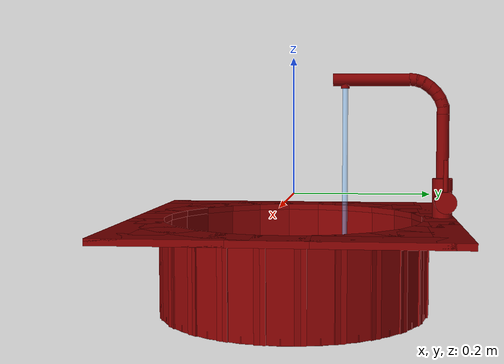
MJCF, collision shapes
<?xml version='1.0' encoding='UTF-8'?>
<mujoco model="model">
  <option timestep="0.002" gravity="0.0 0.0 -9.81"/>
  <compiler angle="radian"/>
  <asset>
    <mesh file="visuals/handle.obj" name="handle_vis"/>
    <mesh file="visuals/Body001.obj" name="Body001_vis"/>
    <mesh file="visuals/spout.obj" name="spout_vis"/>
    <texture file="visuals/T_BC001.png" name="Body001_material" type="2d"/>
    <material name="Body001_material" rgba="1 1 1 1.0" texture="Body001_material" shininess="0.1" specular="5"/>
    <texture file="visuals/T_BC001.png" name="handle_material" type="2d"/>
    <material name="handle_material" rgba="1 1 1 1.0" texture="handle_material" shininess="0.1" specular="5"/>
    <texture file="visuals/T_BC001.png" name="spout_material" type="2d"/>
    <material name="spout_material" rgba="1 1 1 1.0" texture="spout_material" shininess="0.1" specular="5"/>
  </asset>
  <default>
    <default class="visual">
      <geom conaffinity="0" contype="0" group="1" type="mesh"/>
    </default>
    <default class="collision">
      <geom group="0" rgba="0.5 0 0 0.5" solimp="0.998 0.998 0.001" solref="0.001 2"/>
    </default>
    <default class="spawn">
      <geom group="0" rgba="1 1 1 0.5" contype="0" conaffinity="0"/>
      <site group="0" rgba="1 1 1 0.5"/>
    </default>
    <default class="region">
      <geom group="1" conaffinity="0" contype="0" rgba="0 1 0 0"/>
    </default>
  </default>
  <worldbody>
    <body>
      <body name="object">
        <geom mesh="Body001_vis" type="mesh" solimp="0.998 0.998 0.001" solref="0.001 1" friction="0.95 0.3 0.1" class="visual" material="Body001_material"/>
        <geom type="box" pos="-0.00000000 -0.21502809 -0.04046098" size="0.033866215497255325 0.023684591054916382 0.00461614690721035" quat="1.0 0.0 0.0 0.0" class="collision"/>
        <geom type="box" pos="-0.00000000 -0.19462398 -0.10933814" size="0.033866215497255325 0.0025562462396919727 0.06660525500774384" quat="1.0 0.0 0.0 0.0" class="collision"/>
        <geom type="box" pos="-0.05824038 -0.20700471 -0.04046098" size="0.033866215497255325 0.023684000596404076 0.00461614690721035" quat="0.9914448261260986 0.0 -0.0 -0.1305263340473175" class="collision"/>
        <geom type="box" pos="-0.05036251 -0.18799168 -0.10933814" size="0.033866215497255325 0.06660331785678864 0.0025562408845871687" quat="0.7010574340820312 0.7010573744773865 -0.09229595214128494 -0.09229595959186554" class="collision"/>
        <geom type="box" pos="-0.10749446 -0.18622111 -0.04046098" size="0.033866215497255325 0.023684000596404076 0.00461614690721035" quat="0.9659258127212524 0.0 -0.0 -0.2588191032409668" class="collision"/>
        <geom type="box" pos="-0.09729239 -0.16855063 -0.10933814" size="0.033866215497255325 0.06660331785678864 0.0025562408845871687" quat="0.6830127239227295 0.6830126643180847 -0.1830126941204071 -0.1830127090215683" class="collision"/>
        <geom type="box" pos="-0.15201935 -0.15205355 -0.04046098" size="0.033866215497255325 0.023684000596404076 0.00461614690721035" quat="0.9238795042037964 0.0 -0.0 -0.3826834559440613" class="collision"/>
        <geom type="box" pos="-0.13759145 -0.13762566 -0.10933814" size="0.033866215497255325 0.06660331785678864 0.0025562411174178123" quat="0.6532815098762512 0.6532814502716064 -0.27059802412986755 -0.27059805393218994" class="collision"/>
        <geom type="box" pos="-0.18618390 -0.10752630 -0.04046098" size="0.033866215497255325 0.023684000596404076 0.00461614690721035" quat="0.8660253882408142 0.0 -0.0 -0.5" class="collision"/>
        <geom type="box" pos="-0.16851342 -0.09732424 -0.10933814" size="0.033866215497255325 0.06660331785678864 0.0025562411174178123" quat="0.6123724579811096 0.6123723983764648 -0.3535533845424652 -0.3535534143447876" class="collision"/>
        <geom type="box" pos="-0.20682181 -0.05880121 -0.04046098" size="0.033866215497255325 0.023684000596404076 0.00461614690721035" quat="0.7933533191680908 0.0 -0.0 -0.6087614297866821" class="collision"/>
        <geom type="box" pos="-0.18795092 -0.05039291 -0.10933814" size="0.033866215497255325 0.06660331785678864 0.0025562408845871687" quat="0.5609855651855469 0.5609855055809021 -0.43045932054519653 -0.4304593503475189" class="collision"/>
        <geom type="box" pos="-0.21498354 -0.00002991 -0.04046098" size="0.023684002459049225 0.03386673331260681 0.00461614690721035" quat="1.0 0.0 0.0 0.0" class="collision"/>
        <geom type="box" pos="-0.19457942 -0.00002991 -0.10933814" size="0.002556248800829053 0.03386622294783592 0.06660500168800354" quat="1.0 0.0 0.0 0.0" class="collision"/>
        <geom type="box" pos="-0.20702247 0.05797795 -0.04046098" size="0.033866215497255325 0.023684000596404076 0.00461614690721035" quat="0.6087614297866821 0.0 -0.0 -0.7933533191680908" class="collision"/>
        <geom type="box" pos="-0.18794712 0.05033261 -0.10933814" size="0.033866215497255325 0.06660331785678864 0.0025562408845871687" quat="0.4304593503475189 0.43045932054519653 -0.5609855055809021 -0.5609855651855469" class="collision"/>
        <geom type="box" pos="-0.18617658 0.10746452 -0.04046098" size="0.033866215497255325 0.023684000596404076 0.00461614690721035" quat="0.5000000596046448 0.0 -0.0 -0.8660253882408142" class="collision"/>
        <geom type="box" pos="-0.16850610 0.09726247 -0.10933814" size="0.033866215497255325 0.06660331785678864 0.0025562411174178123" quat="0.35355329513549805 0.35355344414711 -0.6123725771903992 -0.6123723387718201" class="collision"/>
        <geom type="box" pos="-0.15200901 0.15198943 -0.04046098" size="0.033866215497255325 0.023684000596404076 0.00461614690721035" quat="0.38268354535102844 0.0 -0.0 -0.9238795042037964" class="collision"/>
        <geom type="box" pos="-0.13758112 0.13756153 -0.10933814" size="0.033866215497255325 0.06660331785678864 0.0025562411174178123" quat="0.2705981433391571 0.2705981135368347 -0.6532814502716064 -0.6532814502716064" class="collision"/>
        <geom type="box" pos="-0.10748178 0.18615399 -0.04046098" size="0.033866215497255325 0.023684000596404076 0.00461614690721035" quat="0.2588190734386444 0.0 -0.0 -0.9659258127212524" class="collision"/>
        <geom type="box" pos="-0.09727971 0.16848351 -0.10933814" size="0.033866215497255325 0.06660331785678864 0.0025562411174178123" quat="0.1830127239227295 0.1830127090215683 -0.6830126643180847 -0.6830127239227295" class="collision"/>
        <geom type="box" pos="-0.05771869 0.20707005 -0.04046098" size="0.033866215497255325 0.023684000596404076 0.00461614690721035" quat="0.13052624464035034 0.0 -0.0 -0.9914448261260986" class="collision"/>
        <geom type="box" pos="-0.05034837 0.18792103 -0.10933814" size="0.033866215497255325 0.06660331785678864 0.0025562408845871687" quat="0.09229599684476852 0.09229598939418793 -0.7010573744773865 -0.7010574340820312" class="collision"/>
        <geom type="box" pos="0.00001462 0.21495365 -0.04046098" size="0.033866219222545624 0.02368444949388504 0.00461614690721035" quat="1.0 0.0 0.0 0.0" class="collision"/>
        <geom type="box" pos="0.00001463 0.19454953 -0.10933814" size="0.033866215497255325 0.0025562515947967768 0.06660474836826324" quat="1.0 0.0 0.0 0.0" class="collision"/>
        <geom type="box" pos="0.05772226 0.20707303 -0.04046098" size="0.033866215497255325 0.023684000596404076 0.00461614690721035" quat="0.13052624464035034 0.0 0.0 0.9914448261260986" class="collision"/>
        <geom type="box" pos="0.05037717 0.18791723 -0.10933814" size="0.033866215497255325 0.06660331785678864 0.0025562408845871687" quat="0.09229599684476852 0.09229598939418793 0.7010573744773865 0.7010574340820312" class="collision"/>
        <geom type="box" pos="0.10750910 0.18614666 -0.04046098" size="0.033866215497255325 0.023684000596404076 0.00461614690721035" quat="0.25881895422935486 0.0 0.0 0.9659258723258972" class="collision"/>
        <geom type="box" pos="0.09730703 0.16847618 -0.10933814" size="0.033866215497255325 0.06660331785678864 0.0025562411174178123" quat="0.1830127239227295 0.1830127090215683 0.6830126643180847 0.6830127239227295" class="collision"/>
        <geom type="box" pos="0.15203400 0.15197910 -0.04046098" size="0.033866215497255325 0.023684000596404076 0.00461614690721035" quat="0.38268330693244934 0.0 0.0 0.9238795638084412" class="collision"/>
        <geom type="box" pos="0.13760611 0.13755122 -0.10933814" size="0.033866215497255325 0.06660331785678864 0.0025562411174178123" quat="0.27059805393218994 0.27059805393218994 0.6532814502716064 0.6532815098762512" class="collision"/>
        <geom type="box" pos="0.18619856 0.10745185 -0.04046098" size="0.033866215497255325 0.023684000596404076 0.00461614690721035" quat="0.5000000596046448 0.0 0.0 0.8660253882408142" class="collision"/>
        <geom type="box" pos="0.16852808 0.09724979 -0.10933814" size="0.033866215497255325 0.06660331785678864 0.0025562411174178123" quat="0.35355329513549805 0.35355344414711 0.6123725771903992 0.6123723387718201" class="collision"/>
        <geom type="box" pos="0.20699248 0.05814468 -0.04046098" size="0.033866215497255325 0.023684000596404076 0.00461614690721035" quat="0.6087614297866821 0.0 0.0 0.7933533191680908" class="collision"/>
        <geom type="box" pos="0.18796560 0.05031845 -0.10933814" size="0.033866215497255325 0.06660331785678864 0.0025562411174178123" quat="0.4304594099521637 0.43045932054519653 0.5609855055809021 0.5609855055809021" class="collision"/>
        <geom type="box" pos="0.21499820 -0.00004455 -0.04046098" size="0.023684006184339523 0.03386658802628517 0.00461614690721035" quat="1.0 0.0 0.0 0.0" class="collision"/>
        <geom type="box" pos="0.19459409 -0.00004455 -0.10933814" size="0.0025562497321516275 0.03386622667312622 0.06660449504852295" quat="1.0 0.0 0.0 0.0" class="collision"/>
        <geom type="box" pos="0.20701507 -0.05813479 -0.04046098" size="0.033866215497255325 0.023684000596404076 0.00461614690721035" quat="0.7933534979820251 0.0 0.0 0.6087612509727478" class="collision"/>
        <geom type="box" pos="0.18796177 -0.05040714 -0.10933814" size="0.033866219222545624 0.06660331785678864 0.002556241350248456" quat="0.5609855651855469 0.5609856247901917 0.43045923113822937 0.43045923113822937" class="collision"/>
        <geom type="box" pos="0.18619123 -0.10753899 -0.04046098" size="0.033866215497255325 0.023684002459049225 0.00461614690721035" quat="0.8660253882408142 0.0 0.0 0.5000000596046448" class="collision"/>
        <geom type="box" pos="0.16852075 -0.09733693 -0.10933814" size="0.033866215497255325 0.06660331785678864 0.002556241350248456" quat="0.6123724579811096 0.6123723983764648 0.3535534143447876 0.35355344414711" class="collision"/>
        <geom type="box" pos="0.15202367 -0.15206389 -0.04046098" size="0.033866215497255325 0.023684000596404076 0.00461614690721035" quat="0.9238795042037964 0.0 0.0 0.3826834559440613" class="collision"/>
        <geom type="box" pos="0.13759577 -0.13763598 -0.10933814" size="0.033866215497255325 0.06660331785678864 0.002556241350248456" quat="0.6532815098762512 0.6532814502716064 0.27059808373451233 0.2705981135368347" class="collision"/>
        <geom type="box" pos="0.10749636 -0.18622847 -0.04046098" size="0.033866215497255325 0.023684000596404076 0.00461614690721035" quat="0.9659258723258972 0.0 0.0 0.25881892442703247" class="collision"/>
        <geom type="box" pos="0.09729431 -0.16855799 -0.10933814" size="0.033866219222545624 0.06660331785678864 0.0025562411174178123" quat="0.6830127239227295 0.6830127239227295 0.18301260471343994 0.18301260471343994" class="collision"/>
        <geom type="box" pos="0.05799950 -0.20707320 -0.04046098" size="0.033866215497255325 0.023684000596404076 0.00461614690721035" quat="0.9914448857307434 0.0 0.0 0.1305261105298996" class="collision"/>
        <geom type="box" pos="0.05036297 -0.18799549 -0.10933814" size="0.033866215497255325 0.06660331785678864 0.0025562411174178123" quat="0.7010574340820312 0.7010573744773865 0.09229589253664017 0.09229589253664017" class="collision"/>
        <geom type="cylinder" pos="-0.00238212 0.21908195 -0.00519466" size="0.01463507954031229 0.028745269402861595" quat="1.0 0.0 0.0 0.0" class="collision"/>
        <geom type="cylinder" pos="0.00000733 -0.00003722 -0.17170629" size="0.19724179804325104 0.004880131687968969" quat="1.0 0.0 0.0 0.0" class="collision"/>
        <geom type="cylinder" pos="0.01232387 0.21908195 -0.00655903" size="0.013429157435894012 0.021804798394441605" quat="0.7071068286895752 -0.0 0.7071067690849304 0.0" class="collision"/>
        <geom type="box" pos="0.15144725 0.21482421 -0.04046098" size="0.08732761442661285 0.023950932547450066 0.00461614690721035" quat="1.0 0.0 0.0 0.0" class="collision"/>
        <geom type="box" pos="-0.21482420 0.12697439 -0.04046098" size="0.023950666189193726 0.08732862770557404 0.00461614690721035" quat="1.0 0.0 0.0 0.0" class="collision"/>
        <geom type="box" pos="-0.15144725 0.21482421 -0.04046098" size="0.08732761442661285 0.02395089715719223 0.00461614690721035" quat="1.0 0.0 0.0 0.0" class="collision"/>
        <geom type="box" pos="0.21482420 0.12697440 -0.04046098" size="0.023950666189193726 0.08732849359512329 0.00461614690721035" quat="1.0 0.0 0.0 0.0" class="collision"/>
        <geom type="box" pos="0.15144725 -0.21482418 -0.04046098" size="0.08732761442661285 0.023950863629579544 0.00461614690721035" quat="1.0 0.0 0.0 0.0" class="collision"/>
        <geom type="box" pos="0.21482421 -0.15144724 -0.04046098" size="0.023950666189193726 0.08732835203409195 0.00461614690721035" quat="1.0 0.0 0.0 0.0" class="collision"/>
        <geom type="box" pos="-0.21482418 -0.15144725 -0.04046098" size="0.023950666189193726 0.08732828497886658 0.00461614690721035" quat="1.0 0.0 0.0 0.0" class="collision"/>
        <geom type="box" pos="-0.15144725 -0.21482418 -0.04046098" size="0.08732761442661285 0.023950813338160515 0.00461614690721035" quat="1.0 0.0 0.0 0.0" class="collision"/>
        <geom type="box" pos="0.01310444 -0.21721402 -0.04046098" size="0.08732761442661285 0.02156096324324608 0.00461614690721035" quat="1.0 0.0 0.0 0.0" class="collision"/>
        <geom type="box" pos="0.17324255 -0.17008647 -0.04046098" size="0.02997155673801899 0.02395077981054783 0.00461614690721035" quat="1.0 0.0 0.0 0.0" class="collision"/>
        <geom type="box" pos="-0.16290979 -0.17008647 -0.04046098" size="0.02997155673801899 0.023950763046741486 0.00461614690721035" quat="1.0 0.0 0.0 0.0" class="collision"/>
        <geom type="box" pos="-0.16290979 0.17515105 -0.04046098" size="0.02997155673801899 0.023950744420289993 0.00461614690721035" quat="1.0 0.0 0.0 0.0" class="collision"/>
        <geom type="box" pos="0.17324255 0.17102140 -0.04046098" size="0.02997155673801899 0.02395072765648365 0.00461614690721035" quat="1.0 0.0 0.0 0.0" class="collision"/>
        <geom type="box" pos="0.01310444 0.21721405 -0.04046098" size="0.08732761442661285 0.021560879424214363 0.00461614690721035" quat="1.0 0.0 0.0 0.0" class="collision"/>
        <geom type="box" pos="0.21721403 -0.02899401 -0.04046098" size="0.021560832858085632 0.087327741086483 0.00461614690721035" quat="1.0 0.0 0.0 0.0" class="collision"/>
        <geom type="box" pos="-0.21721402 -0.02899403 -0.04046098" size="0.021560832858085632 0.08732767403125763 0.00461614690721035" quat="1.0 0.0 0.0 0.0" class="collision"/>
        <body name="handle">
          <joint axis="1.0 0.0 0.0" pos="0.04948952 0.21887262 -0.00683338" limited="true" name="handle_temp_joint" type="hinge" range="-0.7853981633974483 0.7853981633974483" damping="0.5" frictionloss="1" armature="2"/>
          <joint axis="0.0 1.0 0.0" pos="0.04948952 0.21887262 -0.00683338" limited="true" name="handle_joint" type="hinge" range="0 0.5" damping="0.5" frictionloss="1" armature="2"/>
          <geom mesh="handle_vis" type="mesh" solimp="0.998 0.998 0.001" solref="0.001 1" friction="0.95 0.3 0.1" class="visual" material="handle_material"/>
          <geom type="cylinder" pos="0.05064731 0.21887042 -0.00686112" size="0.01529636885970831 0.007576568517833948" quat="0.7071068286895752 -0.0 0.7071067690849304 0.0" class="collision"/>
          <geom name="handle_main" type="cylinder" pos="0.04913951 0.21891160 0.03011614" size="0.0035054702311754227 0.022773226723074913" quat="1.0 0.0 0.0 0.0" class="collision"/>
        </body>
        <body name="spout">
          <joint axis="0.0 0.0 1.0" pos="-0.00220592 0.21913728 0.10001291" limited="true" name="spout_joint" range="-0.7853981633974483 0.7853981633974483" type="hinge" damping="10"/>
          <site type="cylinder" rgba="0.5 0.75 1 0.5" size="0.003897867165505886 0.16643905639648438" pos="-0.00235894 0.07603458 -0.00909392" name="water"/>
          <geom mesh="spout_vis" type="mesh" solimp="0.998 0.998 0.001" solref="0.001 1" friction="0.95 0.3 0.1" class="visual" material="spout_material"/>
          <geom type="cylinder" pos="-0.00220669 0.21887228 0.07117154" size="0.009113517589867115 0.04663829877972603" quat="1.0 0.0 0.0 0.0" class="collision"/>
          <geom type="cylinder" pos="-0.00220669 0.07610644 0.15900610" size="0.006267251912504435 0.0032119145616889" quat="1.0 0.0 0.0 0.0" class="collision"/>
          <geom type="cylinder" pos="-0.00220669 0.21887228 0.12454515" size="0.00911351665854454 0.006880446337163448" quat="1.0 0.0 0.0 0.0" class="collision"/>
          <geom type="cylinder" pos="-0.00220669 0.21673155 0.13408669" size="0.009113517589867115 0.006880446337163448" quat="0.9833017587661743 0.18198253214359283 -4.040823945308088e-17 -2.3274321405825955e-24" class="collision"/>
          <geom type="cylinder" pos="-0.00220669 0.21189962 0.14393405" size="0.009113517589867115 0.006880446802824736" quat="0.9554436206817627 0.29517367482185364 -6.554172201008815e-17 -9.897835805655772e-25" class="collision"/>
          <geom type="cylinder" pos="-0.00220669 0.20419300 0.15323095" size="0.009113517589867115 0.006880446337163448" quat="0.9210039377212524 0.3895533084869385 -8.64982038627762e-17 2.2436633560445836e-23" class="collision"/>
          <geom type="cylinder" pos="-0.00220669 0.19471262 0.16081525" size="0.009113517589867115 0.006880445871502161" quat="0.8841060400009155 0.46728628873825073 -1.0375839936976899e-16 2.1039518298810542e-23" class="collision"/>
          <geom type="cylinder" pos="-0.00220669 0.18480410 0.16570834" size="0.009113517589867115 0.006880446802824736" quat="0.8082178831100464 0.5888835787773132 -1.3075844806622667e-16 2.686716354953654e-23" class="collision"/>
          <geom type="cylinder" pos="-0.00220669 0.17532372 0.16791024" size="0.009113517589867115 0.006880446337163448" quat="0.7533880472183228 0.6575762033462524 -1.4601126151501047e-16 3.086439196491197e-24" class="collision"/>
          <geom type="cylinder" pos="-0.00223529 0.11424045 0.16805538" size="0.009113517589867115 0.05619756877422333" quat="0.7071067094802856 0.7071068286895752 0.0 0.0" class="collision" name="spout_main"/>
        </body>
        <geom class="region" name="reg_basin" type="box" pos="3.278000000001002e-05 -0.00015301499999999246 -0.10301313000000001" size="0.1325307 0.13242410500000001 0.06411359999999999"/>
        <geom class="region" name="reg_main" type="box" pos="4.999999997368221e-09 0.0 -0.10621561" size="0.239774865 0.23977487 0.0713708"/>
      </body>
    </body>
  </worldbody>
  <actuator>
    <motor name="handle_joint_actuator" joint="handle_joint" gear="10"/>
    <motor name="handle_temp_joint_actuator" joint="handle_temp_joint" gear="10"/>
    <motor name="spout_joint_actuator" joint="spout_joint" gear="10"/>
  </actuator>
</mujoco>
